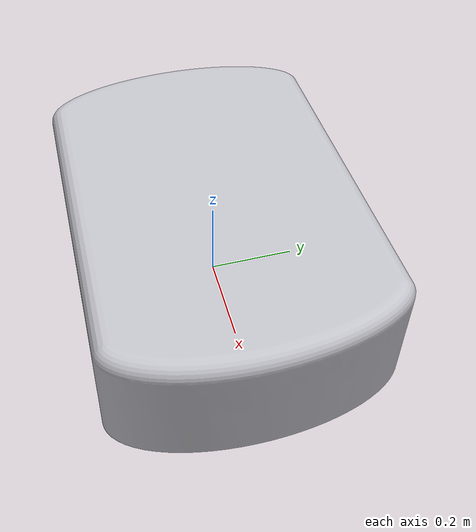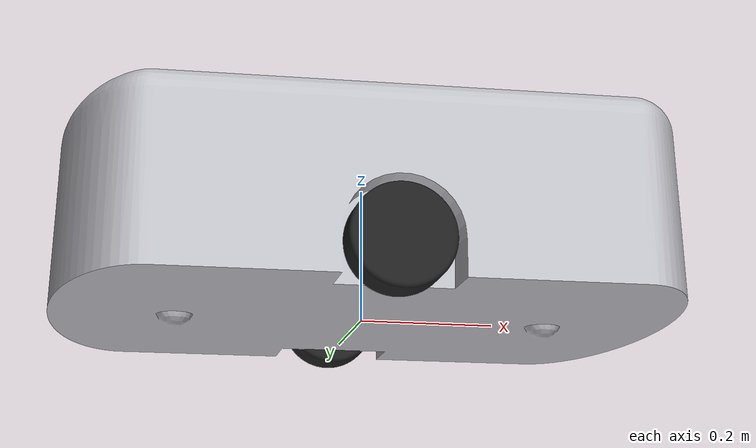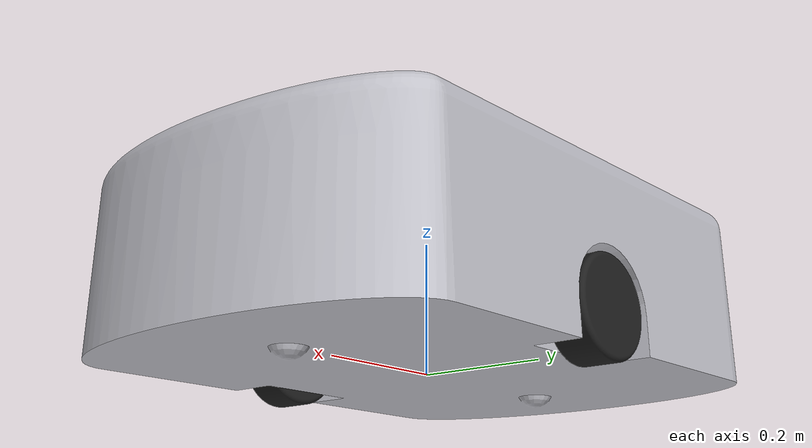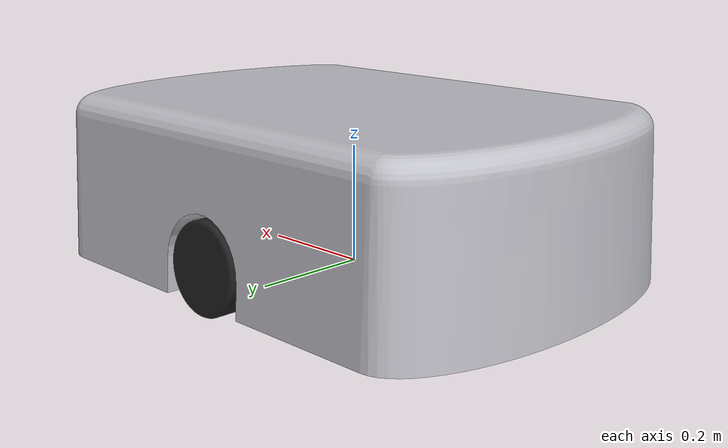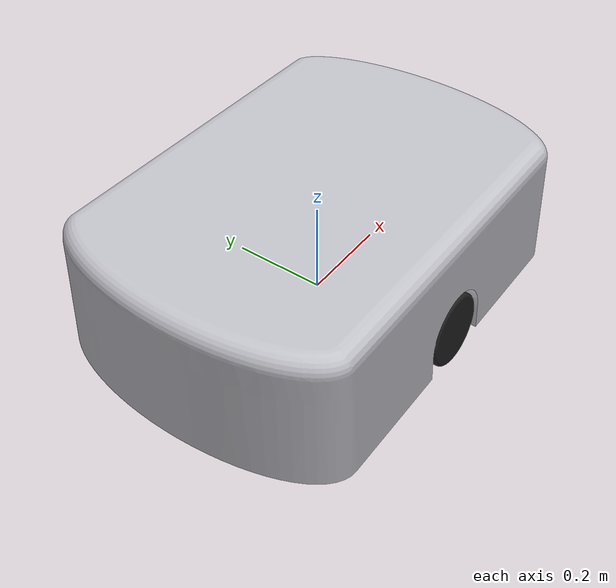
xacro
<?xml version="1.0" ?>
<robot name="Eirabot" xmlns:xacro="http://www.ros.org/wiki/xacro">

<link name="base_link">
  <inertial>
    <origin xyz="6.42240801668372e-08 -2.62331487654833e-08 0.13943196814433906" rpy="0 0 0"/>
    <mass value="1184.7948159540017"/>
    <inertia ixx="44.256163" iyy="83.780241" izz="112.699345" ixy="-1e-05" iyz="-0.0" ixz="1e-06"/>
  </inertial>
  <visual>
    <origin xyz="0 0 0" rpy="0 0 0"/>
    <geometry>
      <mesh filename="file://$(find canopen_tests)/meshes/eirabot/base_link.stl" scale="0.001 0.001 0.001"/>
    </geometry>
    <material name="silver"/>
  </visual>
  <collision>
    <origin xyz="0 0 0" rpy="0 0 0"/>
    <geometry>
      <mesh filename="file://$(find canopen_tests)/meshes/eirabot/base_link.stl" scale="0.001 0.001 0.001"/>
    </geometry>
  </collision>
</link>

<link name="left_wheel_1">
  <inertial>
    <origin xyz="-8.313767391916902e-17 0.04124930094834872 -0.000997448238037768" rpy="0 0 0"/>
    <mass value="8.587603035248412"/>
    <inertia ixx="0.01473" iyy="0.023947" izz="0.014738" ixy="-0.0" iyz="0.000263" ixz="-0.0"/>
  </inertial>
  <visual>
    <origin xyz="0.0 -0.25 -0.057" rpy="0 0 0"/>
    <geometry>
      <mesh filename="file://$(find canopen_tests)/meshes/eirabot/left_wheel_1.stl" scale="0.001 0.001 0.001"/>
    </geometry>
    <material name="black"/>
  </visual>
  <collision>
    <origin xyz="0.0 -0.25 -0.057" rpy="0 0 0"/>
    <geometry>
      <mesh filename="file://$(find canopen_tests)/meshes/eirabot/left_wheel_1.stl" scale="0.001 0.001 0.001"/>
    </geometry>
  </collision>
</link>

<link name="right_wheel_1">
  <inertial>
    <origin xyz="4.9882604351501426e-17 -0.04124930094834872 -0.0009974482380377542" rpy="0 0 0"/>
    <mass value="8.58760303524841"/>
    <inertia ixx="0.01473" iyy="0.023947" izz="0.014738" ixy="-0.0" iyz="-0.000263" ixz="-0.0"/>
  </inertial>
  <visual>
    <origin xyz="-0.0 0.25 -0.057" rpy="0 0 0"/>
    <geometry>
      <mesh filename="file://$(find canopen_tests)/meshes/eirabot/right_wheel_1.stl" scale="0.001 0.001 0.001"/>
    </geometry>
    <material name="black"/>
  </visual>
  <collision>
    <origin xyz="-0.0 0.25 -0.057" rpy="0 0 0"/>
    <geometry>
      <mesh filename="file://$(find canopen_tests)/meshes/eirabot/right_wheel_1.stl" scale="0.001 0.001 0.001"/>
    </geometry>
  </collision>
</link>

<joint name="left_wheel_joint" type="continuous">
  <origin xyz="0.0 0.25 0.057" rpy="0 0 0"/>
  <parent link="base_link"/>
  <child link="left_wheel_1"/>
  <axis xyz="-0.0 1.0 0.0"/>
</joint>

<joint name="right_wheel_joint" type="continuous">
  <origin xyz="0.0 -0.25 0.057" rpy="0 0 0"/>
  <parent link="base_link"/>
  <child link="right_wheel_1"/>
  <axis xyz="0.0 1.0 0.0"/>
</joint>

</robot>
